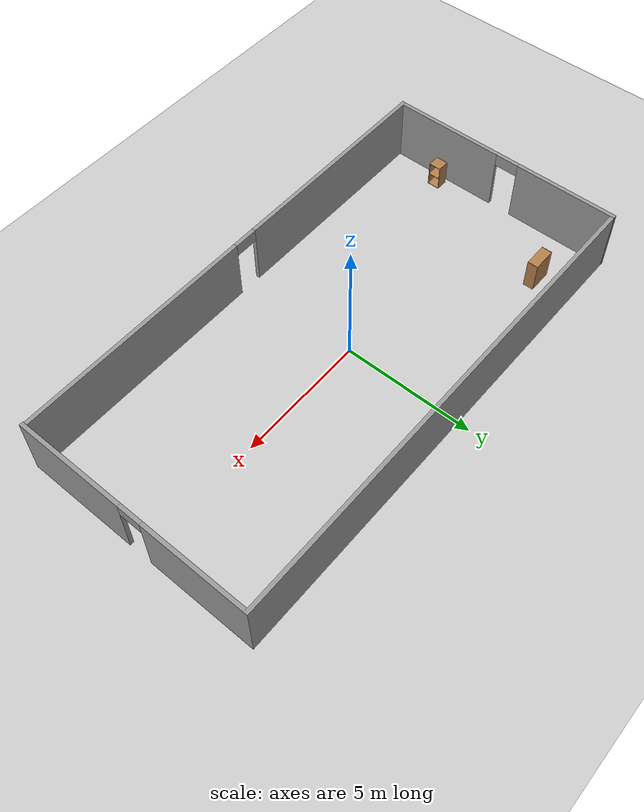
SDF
<sdf version="1.7">
 <world name="default">
  <light name="sun" type="directional">
   <pose>0 0 10 0 -0 0</pose>
   <diffuse>0.8 0.8 0.8 1</diffuse>
   <specular>0.2 0.2 0.2 1</specular>
   <attenuation>
    <range>1000</range>
    <constant>0.9</constant>
    <linear>0.01</linear>
    <quadratic>0.001</quadratic>
   </attenuation>
   <direction>-0.5 0.1 -0.9</direction>
   <spot><inner_angle>0</inner_angle><outer_angle>0</outer_angle><falloff>0</falloff></spot>
  </light>
  <model name="ground_plane">
   <static>1</static>
   <link name="link">
    <collision name="collision">
     <geometry><plane><normal>0 0 1</normal><size>100 100</size></plane></geometry>
     <surface><friction><ode><mu>100</mu><mu2>50</mu2></ode></friction></surface>
    </collision>
    <visual name="visual">
     <cast_shadows>0</cast_shadows>
     <geometry><plane><normal>0 0 1</normal><size>100 100</size></plane></geometry>
     <material>
      <script><uri>file://media/materials/scripts/gazebo.material</uri><name>Gazebo/Grey</name></script>
     </material>
    </visual>
   </link>
  </model>
  <gravity>0 0 -9.8</gravity>
  <magnetic_field>6e-06 2.3e-05 -4.2e-05</magnetic_field>
  <atmosphere type="adiabatic"/>
  <physics type="ode">
   <max_step_size>0.001</max_step_size>
   <real_time_factor>1</real_time_factor>
   <real_time_update_rate>1000</real_time_update_rate>
  </physics>
  <scene><ambient>0.4 0.4 0.4 1</ambient><background>0.7 0.7 0.7 1</background><shadows>1</shadows></scene>
  <audio><device>default</device></audio>
  <spherical_coordinates>
   <surface_model>EARTH_WGS84</surface_model>
   <latitude_deg>0</latitude_deg>
   <longitude_deg>0</longitude_deg>
   <elevation>0</elevation>
   <heading_deg>0</heading_deg>
  </spherical_coordinates>
  <model name="batworld">
   <pose>0.459649 -0.088247 0 0 -0 0</pose>
   <link name="Door_2">
    <collision name="Door_2_Collision">
     <geometry><box><size>0.9 0.17 2</size></box></geometry>
     <pose>0 0 1 0 -0 0</pose>
    </collision>
    <visual name="Door_2_Visual">
     <pose>0 0 1 0 -0 0</pose>
     <geometry><box><size>0.9 0.17 2</size></box></geometry>
     <material>
      <script><uri>file://media/materials/scripts/gazebo.material</uri><name>Gazebo/Grey</name></script>
     </material>
    </visual>
    <pose>-4.25663 4.48528 0 0 -0 0</pose>
   </link>
   <link name="Wall_2">
    <pose>-9.2696 0.035165 0 0 -0 1.57466</pose>
    <visual name="Wall_2_Visual_0">
     <pose>-2.44348 0 1.25 0 -0 0</pose>
     <geometry><box><size>4.37434 0.15 2.5</size></box></geometry>
     <material>
      <script><uri>file://media/materials/scripts/gazebo.material</uri><name>Gazebo/Grey</name></script>
      <ambient>1 1 1 1</ambient>
     </material>
     <meta><layer>0</layer></meta>
    </visual>
    <collision name="Wall_2_Collision_0">
     <geometry><box><size>4.37434 0.15 2.5</size></box></geometry>
     <pose>-2.44348 0 1.25 0 -0 0</pose>
    </collision>
    <visual name="Wall_2_Visual_1">
     <pose>2.63717 0 1.25 0 -0 0</pose>
     <geometry><box><size>3.98696 0.15 2.5</size></box></geometry>
     <material>
      <script><uri>file://media/materials/scripts/gazebo.material</uri><name>Gazebo/Grey</name></script>
      <ambient>1 1 1 1</ambient>
     </material>
     <meta><layer>0</layer></meta>
    </visual>
    <collision name="Wall_2_Collision_1">
     <geometry><box><size>3.98696 0.15 2.5</size></box></geometry>
     <pose>2.63717 0 1.25 0 -0 0</pose>
    </collision>
    <visual name="Wall_2_Visual_2">
     <pose>0.193685 0 2.25 0 -0 0</pose>
     <geometry><box><size>0.9 0.15 0.5</size></box></geometry>
     <material>
      <script><uri>file://media/materials/scripts/gazebo.material</uri><name>Gazebo/Grey</name></script>
      <ambient>1 1 1 1</ambient>
     </material>
     <meta><layer>0</layer></meta>
    </visual>
    <collision name="Wall_2_Collision_2">
     <geometry><box><size>0.9 0.15 0.5</size></box></geometry>
     <pose>0.193685 0 2.25 0 -0 0</pose>
    </collision>
   </link>
   <link name="Wall_3">
    <collision name="Wall_3_Collision">
     <geometry><box><size>18.7245 0.15 2.5</size></box></geometry>
     <pose>0 0 1.25 0 -0 0</pose>
    </collision>
    <visual name="Wall_3_Visual">
     <pose>0 0 1.25 0 -0 0</pose>
     <geometry><box><size>18.7245 0.15 2.5</size></box></geometry>
     <material>
      <script><uri>file://media/materials/scripts/gazebo.material</uri><name>Gazebo/Grey</name></script>
      <ambient>1 1 1 1</ambient>
     </material>
     <meta><layer>0</layer></meta>
    </visual>
    <pose>-0 4.55563 0 0 -0 -0.003788</pose>
   </link>
   <link name="Wall_4">
    <pose>9.2696 -0.035193 0 0 -0 -1.57466</pose>
    <visual name="Wall_4_Visual_0">
     <pose>-2.56674 0 1.25 0 -0 0</pose>
     <geometry><box><size>4.12781 0.15 2.5</size></box></geometry>
     <material>
      <script><uri>file://media/materials/scripts/gazebo.material</uri><name>Gazebo/Grey</name></script>
      <ambient>1 1 1 1</ambient>
     </material>
     <meta><layer>0</layer></meta>
    </visual>
    <collision name="Wall_4_Collision_0">
     <geometry><box><size>4.12781 0.15 2.5</size></box></geometry>
     <pose>-2.56674 0 1.25 0 -0 0</pose>
    </collision>
    <visual name="Wall_4_Visual_1">
     <pose>2.51391 0 1.25 0 -0 0</pose>
     <geometry><box><size>4.23348 0.15 2.5</size></box></geometry>
     <material>
      <script><uri>file://media/materials/scripts/gazebo.material</uri><name>Gazebo/Grey</name></script>
      <ambient>1 1 1 1</ambient>
     </material>
     <meta><layer>0</layer></meta>
    </visual>
    <collision name="Wall_4_Collision_1">
     <geometry><box><size>4.23348 0.15 2.5</size></box></geometry>
     <pose>2.51391 0 1.25 0 -0 0</pose>
    </collision>
    <visual name="Wall_4_Visual_2">
     <pose>-0.052836 0 2.25 0 -0 0</pose>
     <geometry><box><size>0.9 0.15 0.5</size></box></geometry>
     <material>
      <script><uri>file://media/materials/scripts/gazebo.material</uri><name>Gazebo/Grey</name></script>
      <ambient>1 1 1 1</ambient>
     </material>
     <meta><layer>0</layer></meta>
    </visual>
    <collision name="Wall_4_Collision_2">
     <geometry><box><size>0.9 0.15 0.5</size></box></geometry>
     <pose>-0.052836 0 2.25 0 -0 0</pose>
    </collision>
   </link>
   <link name="Wall_6">
    <pose>-0.052768 -4.53807 0 0 -0 -0.001912</pose>
    <visual name="Wall_6_Visual_0">
     <pose>-5.06436 0 1.25 0 -0 0</pose>
     <geometry><box><size>8.41981 0.15 2.5</size></box></geometry>
     <material>
      <script><uri>file://media/materials/scripts/gazebo.material</uri><name>Gazebo/Grey</name></script>
      <ambient>1 1 1 1</ambient>
     </material>
     <meta><layer>0</layer></meta>
    </visual>
    <collision name="Wall_6_Collision_0">
     <geometry><box><size>8.41981 0.15 2.5</size></box></geometry>
     <pose>-5.06436 0 1.25 0 -0 0</pose>
    </collision>
    <visual name="Wall_6_Visual_1">
     <pose>4.65991 0 1.25 0 -0 0</pose>
     <geometry><box><size>9.22872 0.15 2.5</size></box></geometry>
     <material>
      <script><uri>file://media/materials/scripts/gazebo.material</uri><name>Gazebo/Grey</name></script>
      <ambient>1 1 1 1</ambient>
     </material>
     <meta><layer>0</layer></meta>
    </visual>
    <collision name="Wall_6_Collision_1">
     <geometry><box><size>9.22872 0.15 2.5</size></box></geometry>
     <pose>4.65991 0 1.25 0 -0 0</pose>
    </collision>
    <visual name="Wall_6_Visual_2">
     <pose>-0.404454 0 2.25 0 -0 0</pose>
     <geometry><box><size>0.9 0.15 0.5</size></box></geometry>
     <material>
      <script><uri>file://media/materials/scripts/gazebo.material</uri><name>Gazebo/Grey</name></script>
      <ambient>1 1 1 1</ambient>
     </material>
     <meta><layer>0</layer></meta>
    </visual>
    <collision name="Wall_6_Collision_2">
     <geometry><box><size>0.9 0.15 0.5</size></box></geometry>
     <pose>-0.404454 0 2.25 0 -0 0</pose>
    </collision>
   </link>
   <static>1</static>
  </model>
  <model name="bookshelf">
   <static>1</static>
   <link name="link">
    <inertial><mass>1</mass></inertial>
    <collision name="back">
     <pose>0 0.005 0.6 0 -0 0</pose>
     <geometry><box><size>0.9 0.01 1.2</size></box></geometry>
    </collision>
    <visual name="visual1">
     <pose>0 0.005 0.6 0 -0 0</pose>
     <geometry><box><size>0.9 0.01 1.2</size></box></geometry>
     <material>
      <script><uri>file://media/materials/scripts/gazebo.material</uri><name>Gazebo/Wood</name></script>
     </material>
    </visual>
    <collision name="left_side">
     <pose>0.45 -0.195 0.6 0 -0 0</pose>
     <geometry><box><size>0.02 0.4 1.2</size></box></geometry>
    </collision>
    <visual name="visual2">
     <pose>0.45 -0.195 0.6 0 -0 0</pose>
     <geometry><box><size>0.02 0.4 1.2</size></box></geometry>
     <material>
      <script><uri>file://media/materials/scripts/gazebo.material</uri><name>Gazebo/Wood</name></script>
     </material>
    </visual>
    <collision name="right_side">
     <pose>-0.45 -0.195 0.6 0 -0 0</pose>
     <geometry><box><size>0.02 0.4 1.2</size></box></geometry>
    </collision>
    <visual name="visual3">
     <pose>-0.45 -0.195 0.6 0 -0 0</pose>
     <geometry><box><size>0.02 0.4 1.2</size></box></geometry>
     <material>
      <script><uri>file://media/materials/scripts/gazebo.material</uri><name>Gazebo/Wood</name></script>
     </material>
    </visual>
    <collision name="bottom">
     <pose>0 -0.195 0.03 0 -0 0</pose>
     <geometry><box><size>0.88 0.4 0.06</size></box></geometry>
    </collision>
    <visual name="visual4">
     <pose>0 -0.195 0.03 0 -0 0</pose>
     <geometry><box><size>0.88 0.4 0.06</size></box></geometry>
     <material>
      <script><uri>file://media/materials/scripts/gazebo.material</uri><name>Gazebo/Wood</name></script>
     </material>
    </visual>
    <collision name="top">
     <pose>0 -0.195 1.19 0 -0 0</pose>
     <geometry><box><size>0.88 0.4 0.02</size></box></geometry>
    </collision>
    <visual name="visual5">
     <pose>0 -0.195 1.19 0 -0 0</pose>
     <geometry><box><size>0.88 0.4 0.02</size></box></geometry>
     <material>
      <script><uri>file://media/materials/scripts/gazebo.material</uri><name>Gazebo/Wood</name></script>
     </material>
    </visual>
    <collision name="low_shelf">
     <pose>0 -0.195 0.43 0 -0 0</pose>
     <geometry><box><size>0.88 0.4 0.02</size></box></geometry>
    </collision>
    <visual name="visual6">
     <pose>0 -0.195 0.43 0 -0 0</pose>
     <geometry><box><size>0.88 0.4 0.02</size></box></geometry>
     <material>
      <script><uri>file://media/materials/scripts/gazebo.material</uri><name>Gazebo/Wood</name></script>
     </material>
    </visual>
    <collision name="high_shelf">
     <pose>0 -0.195 0.8 0 -0 0</pose>
     <geometry><box><size>0.88 0.4 0.02</size></box></geometry>
    </collision>
    <visual name="visual7">
     <pose>0 -0.195 0.8 0 -0 0</pose>
     <geometry><box><size>0.88 0.4 0.02</size></box></geometry>
     <material>
      <script><uri>file://media/materials/scripts/gazebo.material</uri><name>Gazebo/Wood</name></script>
     </material>
    </visual>
   </link>
   <pose>-6.70954 3.31075 0 0 -0 0</pose>
  </model>
  <model name="cabinet">
   <static>1</static>
   <link name="cabinet_bottom_plate">
    <inertial>
     <pose>0 0 -1 0 -0 0</pose>
     <inertia><ixx>2.05</ixx><ixy>0</ixy><ixz>0</ixz><iyy>2.05</iyy><iyz>0</iyz><izz>2.05</izz></inertia>
     <mass>25</mass>
    </inertial>
    <collision name="cabinet_bottom_plate_geom">
     <pose>0 0 0.01 0 -0 0</pose>
     <geometry><box><size>0.45 0.45 0.02</size></box></geometry>
    </collision>
    <visual name="cabinet_bottom_plate_geom_visual">
     <pose>0 0 0.01 0 -0 0</pose>
     <geometry><box><size>0.45 0.45 0.02</size></box></geometry>
     <material>
      <script><uri>file://media/materials/scripts/gazebo.material</uri><name>Gazebo/Wood</name></script>
     </material>
    </visual>
    <collision name="cabinet_bottom_plate_geom_cabinet_back_plate">
     <pose>0.235 0 0.51 0 -0 0</pose>
     <geometry><box><size>0.02 0.45 1.02</size></box></geometry>
    </collision>
    <visual name="cabinet_bottom_plate_geom_cabinet_back_plate_visual">
     <pose>0.235 0 0.51 0 -0 0</pose>
     <geometry><box><size>0.02 0.45 1.02</size></box></geometry>
     <material>
      <script><uri>file://media/materials/scripts/gazebo.material</uri><name>Gazebo/Wood</name></script>
     </material>
    </visual>
    <collision name="cabinet_bottom_plate_geom_cabinet_left_plate">
     <pose>0 0.235 0.51 0 -0 0</pose>
     <geometry><box><size>0.45 0.02 1.02</size></box></geometry>
    </collision>
    <visual name="cabinet_bottom_plate_geom_cabinet_left_plate_visual">
     <pose>0 0.235 0.51 0 -0 0</pose>
     <geometry><box><size>0.45 0.02 1.02</size></box></geometry>
     <material>
      <script><uri>file://media/materials/scripts/gazebo.material</uri><name>Gazebo/Wood</name></script>
     </material>
    </visual>
    <collision name="cabinet_bottom_plate_geom_cabinet_middle_plate">
     <pose>0 0 0.51 0 -0 0</pose>
     <geometry><box><size>0.45 0.45 0.02</size></box></geometry>
    </collision>
    <visual name="cabinet_bottom_plate_geom_cabinet_middle_plate_visual">
     <pose>0 0 0.51 0 -0 0</pose>
     <geometry><box><size>0.45 0.45 0.02</size></box></geometry>
     <material>
      <script><uri>file://media/materials/scripts/gazebo.material</uri><name>Gazebo/Wood</name></script>
     </material>
    </visual>
    <collision name="cabinet_bottom_plate_geom_cabinet_right_plate">
     <pose>0 -0.235 0.51 0 -0 0</pose>
     <geometry><box><size>0.45 0.02 1.02</size></box></geometry>
    </collision>
    <visual name="cabinet_bottom_plate_geom_cabinet_right_plate_visual">
     <pose>0 -0.235 0.51 0 -0 0</pose>
     <geometry><box><size>0.45 0.02 1.02</size></box></geometry>
     <material>
      <script><uri>file://media/materials/scripts/gazebo.material</uri><name>Gazebo/Wood</name></script>
     </material>
    </visual>
    <collision name="cabinet_bottom_plate_geom_cabinet_top_plate">
     <pose>0 0 1.01 0 -0 0</pose>
     <geometry><box><size>0.45 0.45 0.02</size></box></geometry>
    </collision>
    <visual name="cabinet_bottom_plate_geom_cabinet_top_plate_visual">
     <pose>0 0 1.01 0 -0 0</pose>
     <geometry><box><size>0.45 0.45 0.02</size></box></geometry>
     <material>
      <script><uri>file://media/materials/scripts/gazebo.material</uri><name>Gazebo/Wood</name></script>
     </material>
    </visual>
   </link>
   <pose>-8.34131 -2.48331 0 0 -0 3.12277</pose>
  </model>
 </world>
</sdf>
